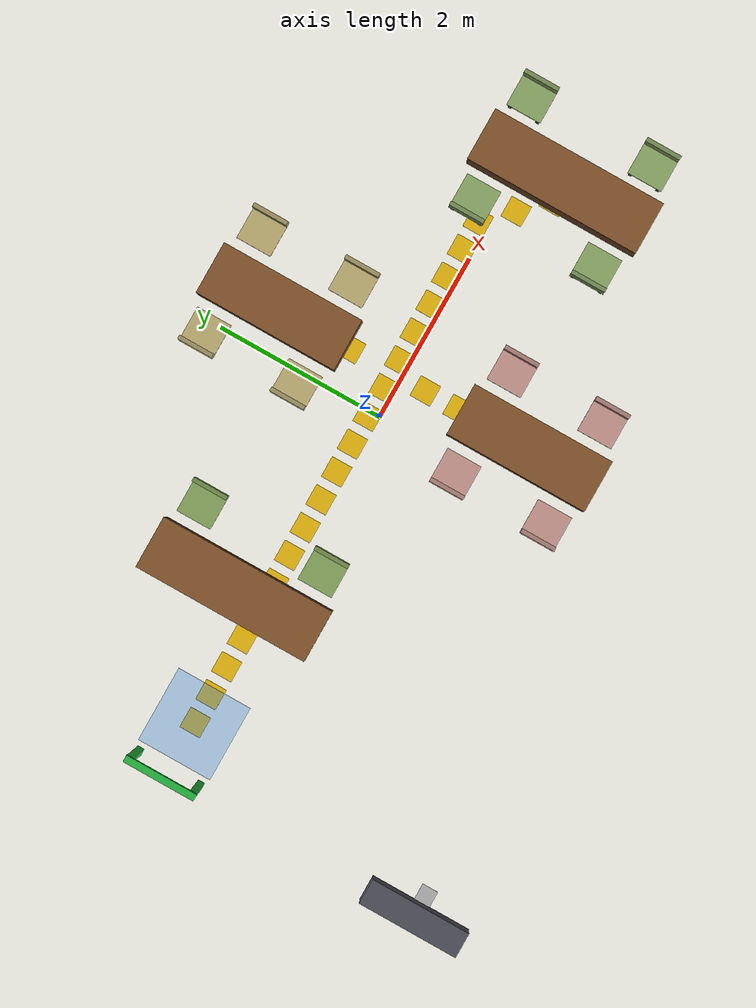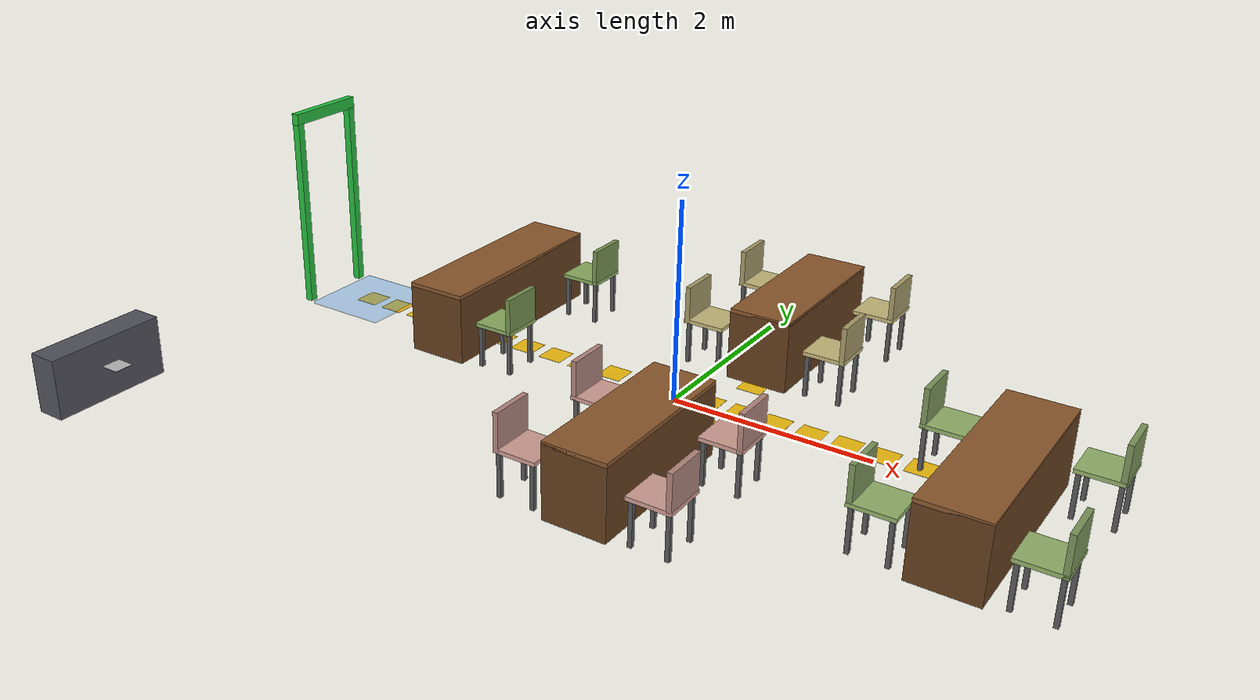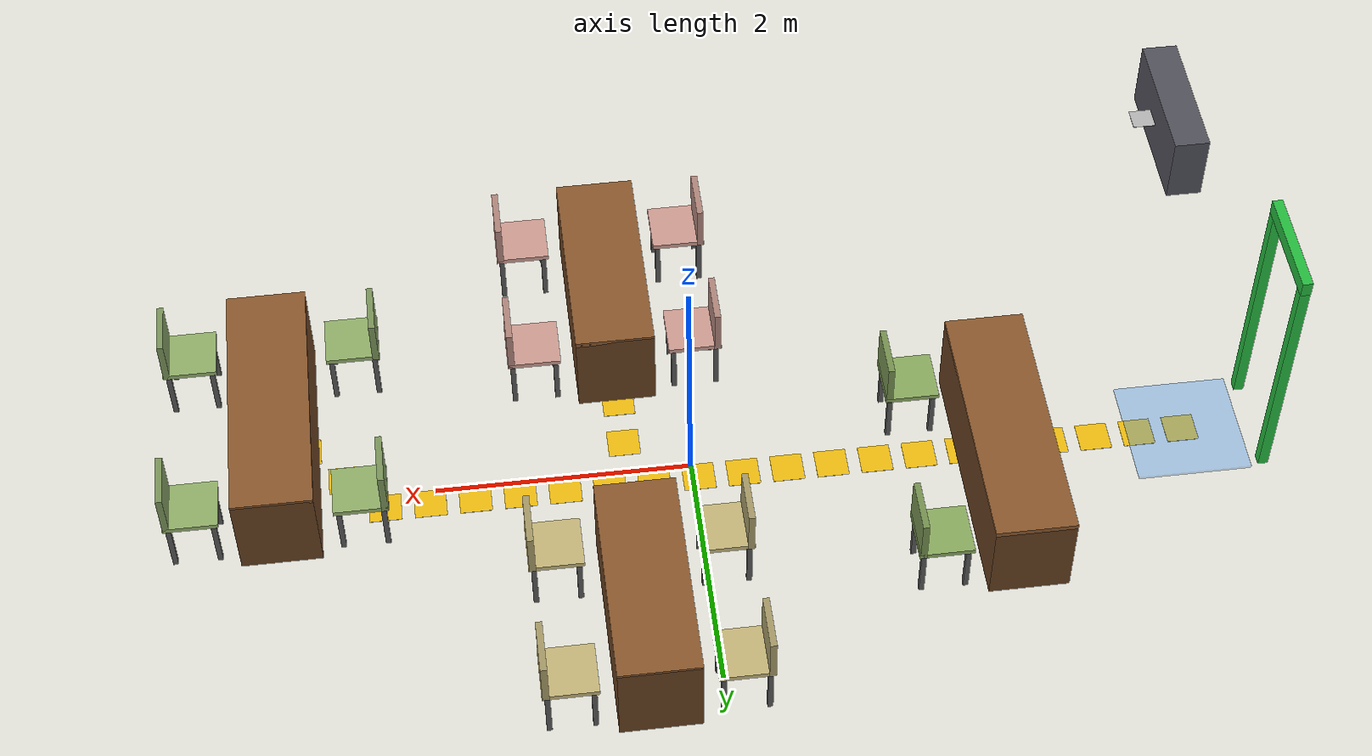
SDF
<sdf version="1.6">
 <world name="world_2026_amr">
  <physics name="8ms" type="ode">
   <max_step_size>0.008</max_step_size>
   <real_time_factor>1</real_time_factor>
   <real_time_update_rate>125</real_time_update_rate>
  </physics>
  <plugin name="gz::sim::systems::Physics" filename="gz-sim-physics-system"/>
  <plugin name="gz::sim::systems::UserCommands" filename="gz-sim-user-commands-system"/>
  <plugin name="gz::sim::systems::SceneBroadcaster" filename="gz-sim-scene-broadcaster-system"/>
  <plugin name="gz::sim::systems::Contact" filename="gz-sim-contact-system"/>
  <plugin name="gz::sim::systems::Sensors" filename="gz-sim-sensors-system">
   <render_engine>ogre2</render_engine>
  </plugin>
  <plugin name="gz::sim::systems::Imu" filename="gz-sim-imu-system"/>
  <plugin name="gz::sim::systems::NavSat" filename="gz-sim-navsat-system"/>
  <plugin name="gz::sim::systems::Actor" filename="gz-sim-actor-system"/>
  <spherical_coordinates>
   <surface_model>EARTH_WGS84</surface_model>
   <world_frame_orientation>ENU</world_frame_orientation>
   <latitude_deg>47.478950</latitude_deg>
   <longitude_deg>19.057785</longitude_deg>
   <elevation>0</elevation>
   <heading_deg>0</heading_deg>
  </spherical_coordinates>
  <light name="sun" type="directional">
   <pose>0 0 10 0 0 0</pose>
   <diffuse>0.8 0.8 0.8 1</diffuse>
   <specular>0.2 0.2 0.2 1</specular>
   <attenuation>
    <range>1000</range>
    <constant>0.9</constant>
    <linear>0.01</linear>
    <quadratic>0.001</quadratic>
   </attenuation>
   <direction>-0.5 0.1 -0.9</direction>
  </light>
  <model name="ground_plane">
   <static>1</static>
   <pose>0 0 0.015 0 0 0</pose>
   <link name="link">
    <collision name="collision">
     <geometry><plane><normal>0 0 1</normal><size>100 100</size></plane></geometry>
     <surface><friction><ode><mu>100</mu><mu2>50</mu2></ode></friction></surface>
    </collision>
   </link>
  </model>
  <model name="table_t1">
   <static>true</static>
   <pose>-2.4 0.45 0 0 0 0</pose>
   <link name="link">
    <collision name="col">
     <pose>0 0 0.375 0 0 0</pose>
     <geometry><box><size>0.62 2.09 0.75</size></box></geometry>
    </collision>
    <visual name="top">
     <pose>0 0 0.730 0 0 0</pose>
     <geometry><box><size>0.62 2.09 0.04</size></box></geometry>
     <material><ambient>0.30 0.18 0.10 1</ambient><diffuse>0.55 0.35 0.18 1</diffuse></material>
    </visual>
    <visual name="body">
     <pose>0 0 0.375 0 0 0</pose>
     <geometry><box><size>0.62 2.09 0.71</size></box></geometry>
     <material><ambient>0.25 0.15 0.08 1</ambient><diffuse>0.40 0.25 0.12 1</diffuse></material>
    </visual>
   </link>
  </model>
  <model name="chair_t1_px1">
   <static>true</static>
   <pose>-1.76 1.21 0 0 0 3.1416</pose>
   <link name="link">
    <collision name="seat_col">
     <pose>0 0 0.450 0 0 0</pose>
     <geometry><box><size>0.42 0.42 0.04</size></box></geometry>
    </collision>
    <collision name="back_col">
     <pose>-0.180 0 0.620 0 0 0</pose>
     <geometry><box><size>0.05 0.42 0.38</size></box></geometry>
    </collision>
    <visual name="seat">
     <pose>0 0 0.450 0 0 0</pose>
     <geometry><box><size>0.42 0.42 0.04</size></box></geometry>
     <material><ambient>0.33 0.41 0.23 1</ambient><diffuse>0.55 0.68 0.38 1</diffuse></material>
    </visual>
    <visual name="back">
     <pose>-0.180 0 0.620 0 0 0</pose>
     <geometry><box><size>0.05 0.42 0.38</size></box></geometry>
     <material><ambient>0.28 0.34 0.19 1</ambient><diffuse>0.47 0.58 0.32 1</diffuse></material>
    </visual>
    <visual name="leg_fl">
     <pose>0.170 0.170 0.215 0 0 0</pose>
     <geometry><box><size>0.04 0.04 0.43</size></box></geometry>
     <material><ambient>0.2 0.2 0.2 1</ambient><diffuse>0.35 0.35 0.35 1</diffuse></material>
    </visual>
    <visual name="leg_fr">
     <pose>0.170 -0.170 0.215 0 0 0</pose>
     <geometry><box><size>0.04 0.04 0.43</size></box></geometry>
     <material><ambient>0.2 0.2 0.2 1</ambient><diffuse>0.35 0.35 0.35 1</diffuse></material>
    </visual>
    <visual name="leg_bl">
     <pose>-0.170 0.170 0.215 0 0 0</pose>
     <geometry><box><size>0.04 0.04 0.43</size></box></geometry>
     <material><ambient>0.2 0.2 0.2 1</ambient><diffuse>0.35 0.35 0.35 1</diffuse></material>
    </visual>
    <visual name="leg_br">
     <pose>-0.170 -0.170 0.215 0 0 0</pose>
     <geometry><box><size>0.04 0.04 0.43</size></box></geometry>
     <material><ambient>0.2 0.2 0.2 1</ambient><diffuse>0.35 0.35 0.35 1</diffuse></material>
    </visual>
   </link>
  </model>
  <model name="chair_t1_px2">
   <static>true</static>
   <pose>-1.76 -0.3 0 0 0 3.1416</pose>
   <link name="link">
    <collision name="seat_col">
     <pose>0 0 0.450 0 0 0</pose>
     <geometry><box><size>0.42 0.42 0.04</size></box></geometry>
    </collision>
    <collision name="back_col">
     <pose>-0.180 0 0.620 0 0 0</pose>
     <geometry><box><size>0.05 0.42 0.38</size></box></geometry>
    </collision>
    <visual name="seat">
     <pose>0 0 0.450 0 0 0</pose>
     <geometry><box><size>0.42 0.42 0.04</size></box></geometry>
     <material><ambient>0.33 0.41 0.23 1</ambient><diffuse>0.55 0.68 0.38 1</diffuse></material>
    </visual>
    <visual name="back">
     <pose>-0.180 0 0.620 0 0 0</pose>
     <geometry><box><size>0.05 0.42 0.38</size></box></geometry>
     <material><ambient>0.28 0.34 0.19 1</ambient><diffuse>0.47 0.58 0.32 1</diffuse></material>
    </visual>
    <visual name="leg_fl">
     <pose>0.170 0.170 0.215 0 0 0</pose>
     <geometry><box><size>0.04 0.04 0.43</size></box></geometry>
     <material><ambient>0.2 0.2 0.2 1</ambient><diffuse>0.35 0.35 0.35 1</diffuse></material>
    </visual>
    <visual name="leg_fr">
     <pose>0.170 -0.170 0.215 0 0 0</pose>
     <geometry><box><size>0.04 0.04 0.43</size></box></geometry>
     <material><ambient>0.2 0.2 0.2 1</ambient><diffuse>0.35 0.35 0.35 1</diffuse></material>
    </visual>
    <visual name="leg_bl">
     <pose>-0.170 0.170 0.215 0 0 0</pose>
     <geometry><box><size>0.04 0.04 0.43</size></box></geometry>
     <material><ambient>0.2 0.2 0.2 1</ambient><diffuse>0.35 0.35 0.35 1</diffuse></material>
    </visual>
    <visual name="leg_br">
     <pose>-0.170 -0.170 0.215 0 0 0</pose>
     <geometry><box><size>0.04 0.04 0.43</size></box></geometry>
     <material><ambient>0.2 0.2 0.2 1</ambient><diffuse>0.35 0.35 0.35 1</diffuse></material>
    </visual>
   </link>
  </model>
  <model name="table_t2">
   <static>true</static>
   <pose>0.5 1.53 0 0 0 0</pose>
   <link name="link">
    <collision name="col">
     <pose>0 0 0.375 0 0 0</pose>
     <geometry><box><size>0.62 1.71 0.75</size></box></geometry>
    </collision>
    <visual name="top">
     <pose>0 0 0.730 0 0 0</pose>
     <geometry><box><size>0.62 1.71 0.04</size></box></geometry>
     <material><ambient>0.30 0.18 0.10 1</ambient><diffuse>0.55 0.35 0.18 1</diffuse></material>
    </visual>
    <visual name="body">
     <pose>0 0 0.375 0 0 0</pose>
     <geometry><box><size>0.62 1.71 0.71</size></box></geometry>
     <material><ambient>0.25 0.15 0.08 1</ambient><diffuse>0.40 0.25 0.12 1</diffuse></material>
    </visual>
   </link>
  </model>
  <model name="chair_t2_px1">
   <static>true</static>
   <pose>1.14 2.1 0 0 0 3.1416</pose>
   <link name="link">
    <collision name="seat_col">
     <pose>0 0 0.450 0 0 0</pose>
     <geometry><box><size>0.42 0.42 0.04</size></box></geometry>
    </collision>
    <collision name="back_col">
     <pose>-0.180 0 0.620 0 0 0</pose>
     <geometry><box><size>0.05 0.42 0.38</size></box></geometry>
    </collision>
    <visual name="seat">
     <pose>0 0 0.450 0 0 0</pose>
     <geometry><box><size>0.42 0.42 0.04</size></box></geometry>
     <material><ambient>0.47 0.43 0.29 1</ambient><diffuse>0.78 0.72 0.48 1</diffuse></material>
    </visual>
    <visual name="back">
     <pose>-0.180 0 0.620 0 0 0</pose>
     <geometry><box><size>0.05 0.42 0.38</size></box></geometry>
     <material><ambient>0.39 0.36 0.24 1</ambient><diffuse>0.66 0.61 0.41 1</diffuse></material>
    </visual>
    <visual name="leg_fl">
     <pose>0.170 0.170 0.215 0 0 0</pose>
     <geometry><box><size>0.04 0.04 0.43</size></box></geometry>
     <material><ambient>0.2 0.2 0.2 1</ambient><diffuse>0.35 0.35 0.35 1</diffuse></material>
    </visual>
    <visual name="leg_fr">
     <pose>0.170 -0.170 0.215 0 0 0</pose>
     <geometry><box><size>0.04 0.04 0.43</size></box></geometry>
     <material><ambient>0.2 0.2 0.2 1</ambient><diffuse>0.35 0.35 0.35 1</diffuse></material>
    </visual>
    <visual name="leg_bl">
     <pose>-0.170 0.170 0.215 0 0 0</pose>
     <geometry><box><size>0.04 0.04 0.43</size></box></geometry>
     <material><ambient>0.2 0.2 0.2 1</ambient><diffuse>0.35 0.35 0.35 1</diffuse></material>
    </visual>
    <visual name="leg_br">
     <pose>-0.170 -0.170 0.215 0 0 0</pose>
     <geometry><box><size>0.04 0.04 0.43</size></box></geometry>
     <material><ambient>0.2 0.2 0.2 1</ambient><diffuse>0.35 0.35 0.35 1</diffuse></material>
    </visual>
   </link>
  </model>
  <model name="chair_t2_px2">
   <static>true</static>
   <pose>1.14 0.96 0 0 0 3.1416</pose>
   <link name="link">
    <collision name="seat_col">
     <pose>0 0 0.450 0 0 0</pose>
     <geometry><box><size>0.42 0.42 0.04</size></box></geometry>
    </collision>
    <collision name="back_col">
     <pose>-0.180 0 0.620 0 0 0</pose>
     <geometry><box><size>0.05 0.42 0.38</size></box></geometry>
    </collision>
    <visual name="seat">
     <pose>0 0 0.450 0 0 0</pose>
     <geometry><box><size>0.42 0.42 0.04</size></box></geometry>
     <material><ambient>0.47 0.43 0.29 1</ambient><diffuse>0.78 0.72 0.48 1</diffuse></material>
    </visual>
    <visual name="back">
     <pose>-0.180 0 0.620 0 0 0</pose>
     <geometry><box><size>0.05 0.42 0.38</size></box></geometry>
     <material><ambient>0.39 0.36 0.24 1</ambient><diffuse>0.66 0.61 0.41 1</diffuse></material>
    </visual>
    <visual name="leg_fl">
     <pose>0.170 0.170 0.215 0 0 0</pose>
     <geometry><box><size>0.04 0.04 0.43</size></box></geometry>
     <material><ambient>0.2 0.2 0.2 1</ambient><diffuse>0.35 0.35 0.35 1</diffuse></material>
    </visual>
    <visual name="leg_fr">
     <pose>0.170 -0.170 0.215 0 0 0</pose>
     <geometry><box><size>0.04 0.04 0.43</size></box></geometry>
     <material><ambient>0.2 0.2 0.2 1</ambient><diffuse>0.35 0.35 0.35 1</diffuse></material>
    </visual>
    <visual name="leg_bl">
     <pose>-0.170 0.170 0.215 0 0 0</pose>
     <geometry><box><size>0.04 0.04 0.43</size></box></geometry>
     <material><ambient>0.2 0.2 0.2 1</ambient><diffuse>0.35 0.35 0.35 1</diffuse></material>
    </visual>
    <visual name="leg_br">
     <pose>-0.170 -0.170 0.215 0 0 0</pose>
     <geometry><box><size>0.04 0.04 0.43</size></box></geometry>
     <material><ambient>0.2 0.2 0.2 1</ambient><diffuse>0.35 0.35 0.35 1</diffuse></material>
    </visual>
   </link>
  </model>
  <model name="chair_t2_nx1">
   <static>true</static>
   <pose>-0.14 2.1 0 0 0 0.0000</pose>
   <link name="link">
    <collision name="seat_col">
     <pose>0 0 0.450 0 0 0</pose>
     <geometry><box><size>0.42 0.42 0.04</size></box></geometry>
    </collision>
    <collision name="back_col">
     <pose>-0.180 0 0.620 0 0 0</pose>
     <geometry><box><size>0.05 0.42 0.38</size></box></geometry>
    </collision>
    <visual name="seat">
     <pose>0 0 0.450 0 0 0</pose>
     <geometry><box><size>0.42 0.42 0.04</size></box></geometry>
     <material><ambient>0.47 0.43 0.29 1</ambient><diffuse>0.78 0.72 0.48 1</diffuse></material>
    </visual>
    <visual name="back">
     <pose>-0.180 0 0.620 0 0 0</pose>
     <geometry><box><size>0.05 0.42 0.38</size></box></geometry>
     <material><ambient>0.39 0.36 0.24 1</ambient><diffuse>0.66 0.61 0.41 1</diffuse></material>
    </visual>
    <visual name="leg_fl">
     <pose>0.170 0.170 0.215 0 0 0</pose>
     <geometry><box><size>0.04 0.04 0.43</size></box></geometry>
     <material><ambient>0.2 0.2 0.2 1</ambient><diffuse>0.35 0.35 0.35 1</diffuse></material>
    </visual>
    <visual name="leg_fr">
     <pose>0.170 -0.170 0.215 0 0 0</pose>
     <geometry><box><size>0.04 0.04 0.43</size></box></geometry>
     <material><ambient>0.2 0.2 0.2 1</ambient><diffuse>0.35 0.35 0.35 1</diffuse></material>
    </visual>
    <visual name="leg_bl">
     <pose>-0.170 0.170 0.215 0 0 0</pose>
     <geometry><box><size>0.04 0.04 0.43</size></box></geometry>
     <material><ambient>0.2 0.2 0.2 1</ambient><diffuse>0.35 0.35 0.35 1</diffuse></material>
    </visual>
    <visual name="leg_br">
     <pose>-0.170 -0.170 0.215 0 0 0</pose>
     <geometry><box><size>0.04 0.04 0.43</size></box></geometry>
     <material><ambient>0.2 0.2 0.2 1</ambient><diffuse>0.35 0.35 0.35 1</diffuse></material>
    </visual>
   </link>
  </model>
  <model name="chair_t2_nx2">
   <static>true</static>
   <pose>-0.14 0.96 0 0 0 0.0000</pose>
   <link name="link">
    <collision name="seat_col">
     <pose>0 0 0.450 0 0 0</pose>
     <geometry><box><size>0.42 0.42 0.04</size></box></geometry>
    </collision>
    <collision name="back_col">
     <pose>-0.180 0 0.620 0 0 0</pose>
     <geometry><box><size>0.05 0.42 0.38</size></box></geometry>
    </collision>
    <visual name="seat">
     <pose>0 0 0.450 0 0 0</pose>
     <geometry><box><size>0.42 0.42 0.04</size></box></geometry>
     <material><ambient>0.47 0.43 0.29 1</ambient><diffuse>0.78 0.72 0.48 1</diffuse></material>
    </visual>
    <visual name="back">
     <pose>-0.180 0 0.620 0 0 0</pose>
     <geometry><box><size>0.05 0.42 0.38</size></box></geometry>
     <material><ambient>0.39 0.36 0.24 1</ambient><diffuse>0.66 0.61 0.41 1</diffuse></material>
    </visual>
    <visual name="leg_fl">
     <pose>0.170 0.170 0.215 0 0 0</pose>
     <geometry><box><size>0.04 0.04 0.43</size></box></geometry>
     <material><ambient>0.2 0.2 0.2 1</ambient><diffuse>0.35 0.35 0.35 1</diffuse></material>
    </visual>
    <visual name="leg_fr">
     <pose>0.170 -0.170 0.215 0 0 0</pose>
     <geometry><box><size>0.04 0.04 0.43</size></box></geometry>
     <material><ambient>0.2 0.2 0.2 1</ambient><diffuse>0.35 0.35 0.35 1</diffuse></material>
    </visual>
    <visual name="leg_bl">
     <pose>-0.170 0.170 0.215 0 0 0</pose>
     <geometry><box><size>0.04 0.04 0.43</size></box></geometry>
     <material><ambient>0.2 0.2 0.2 1</ambient><diffuse>0.35 0.35 0.35 1</diffuse></material>
    </visual>
    <visual name="leg_br">
     <pose>-0.170 -0.170 0.215 0 0 0</pose>
     <geometry><box><size>0.04 0.04 0.43</size></box></geometry>
     <material><ambient>0.2 0.2 0.2 1</ambient><diffuse>0.35 0.35 0.35 1</diffuse></material>
    </visual>
   </link>
  </model>
  <model name="table_t3">
   <static>true</static>
   <pose>0.5 -1.58 0 0 0 0</pose>
   <link name="link">
    <collision name="col">
     <pose>0 0 0.375 0 0 0</pose>
     <geometry><box><size>0.62 1.71 0.75</size></box></geometry>
    </collision>
    <visual name="top">
     <pose>0 0 0.730 0 0 0</pose>
     <geometry><box><size>0.62 1.71 0.04</size></box></geometry>
     <material><ambient>0.30 0.18 0.10 1</ambient><diffuse>0.55 0.35 0.18 1</diffuse></material>
    </visual>
    <visual name="body">
     <pose>0 0 0.375 0 0 0</pose>
     <geometry><box><size>0.62 1.71 0.71</size></box></geometry>
     <material><ambient>0.25 0.15 0.08 1</ambient><diffuse>0.40 0.25 0.12 1</diffuse></material>
    </visual>
   </link>
  </model>
  <model name="chair_t3_px1">
   <static>true</static>
   <pose>1.14 -1.02 0 0 0 3.1416</pose>
   <link name="link">
    <collision name="seat_col">
     <pose>0 0 0.450 0 0 0</pose>
     <geometry><box><size>0.42 0.42 0.04</size></box></geometry>
    </collision>
    <collision name="back_col">
     <pose>-0.180 0 0.620 0 0 0</pose>
     <geometry><box><size>0.05 0.42 0.38</size></box></geometry>
    </collision>
    <visual name="seat">
     <pose>0 0 0.450 0 0 0</pose>
     <geometry><box><size>0.42 0.42 0.04</size></box></geometry>
     <material><ambient>0.49 0.37 0.35 1</ambient><diffuse>0.82 0.62 0.58 1</diffuse></material>
    </visual>
    <visual name="back">
     <pose>-0.180 0 0.620 0 0 0</pose>
     <geometry><box><size>0.05 0.42 0.38</size></box></geometry>
     <material><ambient>0.41 0.31 0.29 1</ambient><diffuse>0.70 0.53 0.49 1</diffuse></material>
    </visual>
    <visual name="leg_fl">
     <pose>0.170 0.170 0.215 0 0 0</pose>
     <geometry><box><size>0.04 0.04 0.43</size></box></geometry>
     <material><ambient>0.2 0.2 0.2 1</ambient><diffuse>0.35 0.35 0.35 1</diffuse></material>
    </visual>
    <visual name="leg_fr">
     <pose>0.170 -0.170 0.215 0 0 0</pose>
     <geometry><box><size>0.04 0.04 0.43</size></box></geometry>
     <material><ambient>0.2 0.2 0.2 1</ambient><diffuse>0.35 0.35 0.35 1</diffuse></material>
    </visual>
    <visual name="leg_bl">
     <pose>-0.170 0.170 0.215 0 0 0</pose>
     <geometry><box><size>0.04 0.04 0.43</size></box></geometry>
     <material><ambient>0.2 0.2 0.2 1</ambient><diffuse>0.35 0.35 0.35 1</diffuse></material>
    </visual>
    <visual name="leg_br">
     <pose>-0.170 -0.170 0.215 0 0 0</pose>
     <geometry><box><size>0.04 0.04 0.43</size></box></geometry>
     <material><ambient>0.2 0.2 0.2 1</ambient><diffuse>0.35 0.35 0.35 1</diffuse></material>
    </visual>
   </link>
  </model>
  <model name="chair_t3_px2">
   <static>true</static>
   <pose>1.14 -2.15 0 0 0 3.1416</pose>
   <link name="link">
    <collision name="seat_col">
     <pose>0 0 0.450 0 0 0</pose>
     <geometry><box><size>0.42 0.42 0.04</size></box></geometry>
    </collision>
    <collision name="back_col">
     <pose>-0.180 0 0.620 0 0 0</pose>
     <geometry><box><size>0.05 0.42 0.38</size></box></geometry>
    </collision>
    <visual name="seat">
     <pose>0 0 0.450 0 0 0</pose>
     <geometry><box><size>0.42 0.42 0.04</size></box></geometry>
     <material><ambient>0.49 0.37 0.35 1</ambient><diffuse>0.82 0.62 0.58 1</diffuse></material>
    </visual>
    <visual name="back">
     <pose>-0.180 0 0.620 0 0 0</pose>
     <geometry><box><size>0.05 0.42 0.38</size></box></geometry>
     <material><ambient>0.41 0.31 0.29 1</ambient><diffuse>0.70 0.53 0.49 1</diffuse></material>
    </visual>
    <visual name="leg_fl">
     <pose>0.170 0.170 0.215 0 0 0</pose>
     <geometry><box><size>0.04 0.04 0.43</size></box></geometry>
     <material><ambient>0.2 0.2 0.2 1</ambient><diffuse>0.35 0.35 0.35 1</diffuse></material>
    </visual>
    <visual name="leg_fr">
     <pose>0.170 -0.170 0.215 0 0 0</pose>
     <geometry><box><size>0.04 0.04 0.43</size></box></geometry>
     <material><ambient>0.2 0.2 0.2 1</ambient><diffuse>0.35 0.35 0.35 1</diffuse></material>
    </visual>
    <visual name="leg_bl">
     <pose>-0.170 0.170 0.215 0 0 0</pose>
     <geometry><box><size>0.04 0.04 0.43</size></box></geometry>
     <material><ambient>0.2 0.2 0.2 1</ambient><diffuse>0.35 0.35 0.35 1</diffuse></material>
    </visual>
    <visual name="leg_br">
     <pose>-0.170 -0.170 0.215 0 0 0</pose>
     <geometry><box><size>0.04 0.04 0.43</size></box></geometry>
     <material><ambient>0.2 0.2 0.2 1</ambient><diffuse>0.35 0.35 0.35 1</diffuse></material>
    </visual>
   </link>
  </model>
  <model name="chair_t3_nx1">
   <static>true</static>
   <pose>-0.14 -1.02 0 0 0 0.0000</pose>
   <link name="link">
    <collision name="seat_col">
     <pose>0 0 0.450 0 0 0</pose>
     <geometry><box><size>0.42 0.42 0.04</size></box></geometry>
    </collision>
    <collision name="back_col">
     <pose>-0.180 0 0.620 0 0 0</pose>
     <geometry><box><size>0.05 0.42 0.38</size></box></geometry>
    </collision>
    <visual name="seat">
     <pose>0 0 0.450 0 0 0</pose>
     <geometry><box><size>0.42 0.42 0.04</size></box></geometry>
     <material><ambient>0.49 0.37 0.35 1</ambient><diffuse>0.82 0.62 0.58 1</diffuse></material>
    </visual>
    <visual name="back">
     <pose>-0.180 0 0.620 0 0 0</pose>
     <geometry><box><size>0.05 0.42 0.38</size></box></geometry>
     <material><ambient>0.41 0.31 0.29 1</ambient><diffuse>0.70 0.53 0.49 1</diffuse></material>
    </visual>
    <visual name="leg_fl">
     <pose>0.170 0.170 0.215 0 0 0</pose>
     <geometry><box><size>0.04 0.04 0.43</size></box></geometry>
     <material><ambient>0.2 0.2 0.2 1</ambient><diffuse>0.35 0.35 0.35 1</diffuse></material>
    </visual>
    <visual name="leg_fr">
     <pose>0.170 -0.170 0.215 0 0 0</pose>
     <geometry><box><size>0.04 0.04 0.43</size></box></geometry>
     <material><ambient>0.2 0.2 0.2 1</ambient><diffuse>0.35 0.35 0.35 1</diffuse></material>
    </visual>
    <visual name="leg_bl">
     <pose>-0.170 0.170 0.215 0 0 0</pose>
     <geometry><box><size>0.04 0.04 0.43</size></box></geometry>
     <material><ambient>0.2 0.2 0.2 1</ambient><diffuse>0.35 0.35 0.35 1</diffuse></material>
    </visual>
    <visual name="leg_br">
     <pose>-0.170 -0.170 0.215 0 0 0</pose>
     <geometry><box><size>0.04 0.04 0.43</size></box></geometry>
     <material><ambient>0.2 0.2 0.2 1</ambient><diffuse>0.35 0.35 0.35 1</diffuse></material>
    </visual>
   </link>
  </model>
  <model name="chair_t3_nx2">
   <static>true</static>
   <pose>-0.14 -2.15 0 0 0 0.0000</pose>
   <link name="link">
    <collision name="seat_col">
     <pose>0 0 0.450 0 0 0</pose>
     <geometry><box><size>0.42 0.42 0.04</size></box></geometry>
    </collision>
    <collision name="back_col">
     <pose>-0.180 0 0.620 0 0 0</pose>
     <geometry><box><size>0.05 0.42 0.38</size></box></geometry>
    </collision>
    <visual name="seat">
     <pose>0 0 0.450 0 0 0</pose>
     <geometry><box><size>0.42 0.42 0.04</size></box></geometry>
     <material><ambient>0.49 0.37 0.35 1</ambient><diffuse>0.82 0.62 0.58 1</diffuse></material>
    </visual>
    <visual name="back">
     <pose>-0.180 0 0.620 0 0 0</pose>
     <geometry><box><size>0.05 0.42 0.38</size></box></geometry>
     <material><ambient>0.41 0.31 0.29 1</ambient><diffuse>0.70 0.53 0.49 1</diffuse></material>
    </visual>
    <visual name="leg_fl">
     <pose>0.170 0.170 0.215 0 0 0</pose>
     <geometry><box><size>0.04 0.04 0.43</size></box></geometry>
     <material><ambient>0.2 0.2 0.2 1</ambient><diffuse>0.35 0.35 0.35 1</diffuse></material>
    </visual>
    <visual name="leg_fr">
     <pose>0.170 -0.170 0.215 0 0 0</pose>
     <geometry><box><size>0.04 0.04 0.43</size></box></geometry>
     <material><ambient>0.2 0.2 0.2 1</ambient><diffuse>0.35 0.35 0.35 1</diffuse></material>
    </visual>
    <visual name="leg_bl">
     <pose>-0.170 0.170 0.215 0 0 0</pose>
     <geometry><box><size>0.04 0.04 0.43</size></box></geometry>
     <material><ambient>0.2 0.2 0.2 1</ambient><diffuse>0.35 0.35 0.35 1</diffuse></material>
    </visual>
    <visual name="leg_br">
     <pose>-0.170 -0.170 0.215 0 0 0</pose>
     <geometry><box><size>0.04 0.04 0.43</size></box></geometry>
     <material><ambient>0.2 0.2 0.2 1</ambient><diffuse>0.35 0.35 0.35 1</diffuse></material>
    </visual>
   </link>
  </model>
  <model name="table_t4">
   <static>true</static>
   <pose>3.2 -0.5 0 0 0 0</pose>
   <link name="link">
    <collision name="col">
     <pose>0 0 0.375 0 0 0</pose>
     <geometry><box><size>0.62 2.09 0.75</size></box></geometry>
    </collision>
    <visual name="top">
     <pose>0 0 0.730 0 0 0</pose>
     <geometry><box><size>0.62 2.09 0.04</size></box></geometry>
     <material><ambient>0.30 0.18 0.10 1</ambient><diffuse>0.55 0.35 0.18 1</diffuse></material>
    </visual>
    <visual name="body">
     <pose>0 0 0.375 0 0 0</pose>
     <geometry><box><size>0.62 2.09 0.71</size></box></geometry>
     <material><ambient>0.25 0.15 0.08 1</ambient><diffuse>0.40 0.25 0.12 1</diffuse></material>
    </visual>
   </link>
  </model>
  <model name="chair_t4_px1">
   <static>true</static>
   <pose>3.84 0.26 0 0 0 3.1416</pose>
   <link name="link">
    <collision name="seat_col">
     <pose>0 0 0.450 0 0 0</pose>
     <geometry><box><size>0.42 0.42 0.04</size></box></geometry>
    </collision>
    <collision name="back_col">
     <pose>-0.180 0 0.620 0 0 0</pose>
     <geometry><box><size>0.05 0.42 0.38</size></box></geometry>
    </collision>
    <visual name="seat">
     <pose>0 0 0.450 0 0 0</pose>
     <geometry><box><size>0.42 0.42 0.04</size></box></geometry>
     <material><ambient>0.35 0.42 0.25 1</ambient><diffuse>0.58 0.70 0.42 1</diffuse></material>
    </visual>
    <visual name="back">
     <pose>-0.180 0 0.620 0 0 0</pose>
     <geometry><box><size>0.05 0.42 0.38</size></box></geometry>
     <material><ambient>0.29 0.35 0.21 1</ambient><diffuse>0.49 0.59 0.36 1</diffuse></material>
    </visual>
    <visual name="leg_fl">
     <pose>0.170 0.170 0.215 0 0 0</pose>
     <geometry><box><size>0.04 0.04 0.43</size></box></geometry>
     <material><ambient>0.2 0.2 0.2 1</ambient><diffuse>0.35 0.35 0.35 1</diffuse></material>
    </visual>
    <visual name="leg_fr">
     <pose>0.170 -0.170 0.215 0 0 0</pose>
     <geometry><box><size>0.04 0.04 0.43</size></box></geometry>
     <material><ambient>0.2 0.2 0.2 1</ambient><diffuse>0.35 0.35 0.35 1</diffuse></material>
    </visual>
    <visual name="leg_bl">
     <pose>-0.170 0.170 0.215 0 0 0</pose>
     <geometry><box><size>0.04 0.04 0.43</size></box></geometry>
     <material><ambient>0.2 0.2 0.2 1</ambient><diffuse>0.35 0.35 0.35 1</diffuse></material>
    </visual>
    <visual name="leg_br">
     <pose>-0.170 -0.170 0.215 0 0 0</pose>
     <geometry><box><size>0.04 0.04 0.43</size></box></geometry>
     <material><ambient>0.2 0.2 0.2 1</ambient><diffuse>0.35 0.35 0.35 1</diffuse></material>
    </visual>
   </link>
  </model>
  <model name="chair_t4_px2">
   <static>true</static>
   <pose>3.84 -1.25 0 0 0 3.1416</pose>
   <link name="link">
    <collision name="seat_col">
     <pose>0 0 0.450 0 0 0</pose>
     <geometry><box><size>0.42 0.42 0.04</size></box></geometry>
    </collision>
    <collision name="back_col">
     <pose>-0.180 0 0.620 0 0 0</pose>
     <geometry><box><size>0.05 0.42 0.38</size></box></geometry>
    </collision>
    <visual name="seat">
     <pose>0 0 0.450 0 0 0</pose>
     <geometry><box><size>0.42 0.42 0.04</size></box></geometry>
     <material><ambient>0.35 0.42 0.25 1</ambient><diffuse>0.58 0.70 0.42 1</diffuse></material>
    </visual>
    <visual name="back">
     <pose>-0.180 0 0.620 0 0 0</pose>
     <geometry><box><size>0.05 0.42 0.38</size></box></geometry>
     <material><ambient>0.29 0.35 0.21 1</ambient><diffuse>0.49 0.59 0.36 1</diffuse></material>
    </visual>
    <visual name="leg_fl">
     <pose>0.170 0.170 0.215 0 0 0</pose>
     <geometry><box><size>0.04 0.04 0.43</size></box></geometry>
     <material><ambient>0.2 0.2 0.2 1</ambient><diffuse>0.35 0.35 0.35 1</diffuse></material>
    </visual>
    <visual name="leg_fr">
     <pose>0.170 -0.170 0.215 0 0 0</pose>
     <geometry><box><size>0.04 0.04 0.43</size></box></geometry>
     <material><ambient>0.2 0.2 0.2 1</ambient><diffuse>0.35 0.35 0.35 1</diffuse></material>
    </visual>
    <visual name="leg_bl">
     <pose>-0.170 0.170 0.215 0 0 0</pose>
     <geometry><box><size>0.04 0.04 0.43</size></box></geometry>
     <material><ambient>0.2 0.2 0.2 1</ambient><diffuse>0.35 0.35 0.35 1</diffuse></material>
    </visual>
    <visual name="leg_br">
     <pose>-0.170 -0.170 0.215 0 0 0</pose>
     <geometry><box><size>0.04 0.04 0.43</size></box></geometry>
     <material><ambient>0.2 0.2 0.2 1</ambient><diffuse>0.35 0.35 0.35 1</diffuse></material>
    </visual>
   </link>
  </model>
  <model name="chair_t4_nx1">
   <static>true</static>
   <pose>2.56 0.26 0 0 0 0.0000</pose>
   <link name="link">
    <collision name="seat_col">
     <pose>0 0 0.450 0 0 0</pose>
     <geometry><box><size>0.42 0.42 0.04</size></box></geometry>
    </collision>
    <collision name="back_col">
     <pose>-0.180 0 0.620 0 0 0</pose>
     <geometry><box><size>0.05 0.42 0.38</size></box></geometry>
    </collision>
    <visual name="seat">
     <pose>0 0 0.450 0 0 0</pose>
     <geometry><box><size>0.42 0.42 0.04</size></box></geometry>
     <material><ambient>0.35 0.42 0.25 1</ambient><diffuse>0.58 0.70 0.42 1</diffuse></material>
    </visual>
    <visual name="back">
     <pose>-0.180 0 0.620 0 0 0</pose>
     <geometry><box><size>0.05 0.42 0.38</size></box></geometry>
     <material><ambient>0.29 0.35 0.21 1</ambient><diffuse>0.49 0.59 0.36 1</diffuse></material>
    </visual>
    <visual name="leg_fl">
     <pose>0.170 0.170 0.215 0 0 0</pose>
     <geometry><box><size>0.04 0.04 0.43</size></box></geometry>
     <material><ambient>0.2 0.2 0.2 1</ambient><diffuse>0.35 0.35 0.35 1</diffuse></material>
    </visual>
    <visual name="leg_fr">
     <pose>0.170 -0.170 0.215 0 0 0</pose>
     <geometry><box><size>0.04 0.04 0.43</size></box></geometry>
     <material><ambient>0.2 0.2 0.2 1</ambient><diffuse>0.35 0.35 0.35 1</diffuse></material>
    </visual>
    <visual name="leg_bl">
     <pose>-0.170 0.170 0.215 0 0 0</pose>
     <geometry><box><size>0.04 0.04 0.43</size></box></geometry>
     <material><ambient>0.2 0.2 0.2 1</ambient><diffuse>0.35 0.35 0.35 1</diffuse></material>
    </visual>
    <visual name="leg_br">
     <pose>-0.170 -0.170 0.215 0 0 0</pose>
     <geometry><box><size>0.04 0.04 0.43</size></box></geometry>
     <material><ambient>0.2 0.2 0.2 1</ambient><diffuse>0.35 0.35 0.35 1</diffuse></material>
    </visual>
   </link>
  </model>
  <model name="chair_t4_nx2">
   <static>true</static>
   <pose>2.56 -1.25 0 0 0 0.0000</pose>
   <link name="link">
    <collision name="seat_col">
     <pose>0 0 0.450 0 0 0</pose>
     <geometry><box><size>0.42 0.42 0.04</size></box></geometry>
    </collision>
    <collision name="back_col">
     <pose>-0.180 0 0.620 0 0 0</pose>
     <geometry><box><size>0.05 0.42 0.38</size></box></geometry>
    </collision>
    <visual name="seat">
     <pose>0 0 0.450 0 0 0</pose>
     <geometry><box><size>0.42 0.42 0.04</size></box></geometry>
     <material><ambient>0.35 0.42 0.25 1</ambient><diffuse>0.58 0.70 0.42 1</diffuse></material>
    </visual>
    <visual name="back">
     <pose>-0.180 0 0.620 0 0 0</pose>
     <geometry><box><size>0.05 0.42 0.38</size></box></geometry>
     <material><ambient>0.29 0.35 0.21 1</ambient><diffuse>0.49 0.59 0.36 1</diffuse></material>
    </visual>
    <visual name="leg_fl">
     <pose>0.170 0.170 0.215 0 0 0</pose>
     <geometry><box><size>0.04 0.04 0.43</size></box></geometry>
     <material><ambient>0.2 0.2 0.2 1</ambient><diffuse>0.35 0.35 0.35 1</diffuse></material>
    </visual>
    <visual name="leg_fr">
     <pose>0.170 -0.170 0.215 0 0 0</pose>
     <geometry><box><size>0.04 0.04 0.43</size></box></geometry>
     <material><ambient>0.2 0.2 0.2 1</ambient><diffuse>0.35 0.35 0.35 1</diffuse></material>
    </visual>
    <visual name="leg_bl">
     <pose>-0.170 0.170 0.215 0 0 0</pose>
     <geometry><box><size>0.04 0.04 0.43</size></box></geometry>
     <material><ambient>0.2 0.2 0.2 1</ambient><diffuse>0.35 0.35 0.35 1</diffuse></material>
    </visual>
    <visual name="leg_br">
     <pose>-0.170 -0.170 0.215 0 0 0</pose>
     <geometry><box><size>0.04 0.04 0.43</size></box></geometry>
     <material><ambient>0.2 0.2 0.2 1</ambient><diffuse>0.35 0.35 0.35 1</diffuse></material>
    </visual>
   </link>
  </model>
  <model name="entry_door_frame">
   <static>true</static>
   <pose>-4.47 0.12 0 0 0 1.5708</pose>
   <link name="link">
    <visual name="lintel">
     <pose>0 0 2.05 0 0 0</pose>
     <geometry><box><size>0.85 0.08 0.12</size></box></geometry>
     <material><ambient>0.1 0.55 0.2 1</ambient><diffuse>0.15 0.75 0.25 1</diffuse></material>
    </visual>
    <visual name="jamb_l">
     <pose>-0.38 0 1.0 0 0 0</pose>
     <geometry><box><size>0.08 0.08 2.0</size></box></geometry>
     <material><ambient>0.1 0.55 0.2 1</ambient><diffuse>0.15 0.75 0.25 1</diffuse></material>
    </visual>
    <visual name="jamb_r">
     <pose>0.38 0 1.0 0 0 0</pose>
     <geometry><box><size>0.08 0.08 2.0</size></box></geometry>
     <material><ambient>0.1 0.55 0.2 1</ambient><diffuse>0.15 0.75 0.25 1</diffuse></material>
    </visual>
   </link>
  </model>
  <model name="entry_beacon_zone">
   <static>true</static>
   <pose>-3.92 0.12 0.01 0 0 0</pose>
   <link name="link">
    <visual name="zone">
     <geometry><box><size>0.9 0.9 0.02</size></box></geometry>
     <material><ambient>0.1 0.45 0.85 0.35</ambient><diffuse>0.2 0.55 0.95 0.35</diffuse></material>
    </visual>
   </link>
  </model>
  <model name="hideout_cabinet">
   <static>true</static>
   <pose>-4.55 -3.0 0 0 0 0</pose>
   <link name="link">
    <collision name="col">
     <pose>0 0 0.30 0 0 0</pose>
     <geometry><box><size>0.30 1.20 0.60</size></box></geometry>
    </collision>
    <visual name="vis">
     <pose>0 0 0.30 0 0 0</pose>
     <geometry><box><size>0.30 1.20 0.60</size></box></geometry>
     <material><ambient>0.18 0.18 0.20 1</ambient><diffuse>0.32 0.32 0.36 1</diffuse></material>
    </visual>
   </link>
  </model>
  <include><uri>model://aruco_0</uri><name>hideout_aruco</name><pose>-4.38 -3.0 0.35 0 1.5708 0</pose></include>
  <model name="tactile_block_0">
   <static>true</static>
   <pose>-3.900 0.120 0.012 0 0 0</pose>
   <link name="link">
    <visual name="visual">
     <geometry><box><size>0.25 0.25 0.003</size></box></geometry>
     <material><ambient>0.95 0.75 0.06 1.0</ambient><diffuse>0.95 0.75 0.06 1.0</diffuse></material>
    </visual>
   </link>
  </model>
  <model name="tactile_block_1">
   <static>true</static>
   <pose>-3.550 0.120 0.012 0 0 0</pose>
   <link name="link">
    <visual name="visual">
     <geometry><box><size>0.25 0.25 0.003</size></box></geometry>
     <material><ambient>0.95 0.75 0.06 1.0</ambient><diffuse>0.95 0.75 0.06 1.0</diffuse></material>
    </visual>
   </link>
  </model>
  <model name="tactile_block_2">
   <static>true</static>
   <pose>-3.200 0.120 0.012 0 0 0</pose>
   <link name="link">
    <visual name="visual">
     <geometry><box><size>0.25 0.25 0.003</size></box></geometry>
     <material><ambient>0.95 0.75 0.06 1.0</ambient><diffuse>0.95 0.75 0.06 1.0</diffuse></material>
    </visual>
   </link>
  </model>
  <model name="tactile_block_3">
   <static>true</static>
   <pose>-2.850 0.120 0.012 0 0 0</pose>
   <link name="link">
    <visual name="visual">
     <geometry><box><size>0.25 0.25 0.003</size></box></geometry>
     <material><ambient>0.95 0.75 0.06 1.0</ambient><diffuse>0.95 0.75 0.06 1.0</diffuse></material>
    </visual>
   </link>
  </model>
  <model name="tactile_block_4">
   <static>true</static>
   <pose>-2.500 0.120 0.012 0 0 0</pose>
   <link name="link">
    <visual name="visual">
     <geometry><box><size>0.25 0.25 0.003</size></box></geometry>
     <material><ambient>0.95 0.75 0.06 1.0</ambient><diffuse>0.95 0.75 0.06 1.0</diffuse></material>
    </visual>
   </link>
  </model>
  <model name="tactile_block_5">
   <static>true</static>
   <pose>-2.150 0.120 0.012 0 0 0</pose>
   <link name="link">
    <visual name="visual">
     <geometry><box><size>0.25 0.25 0.003</size></box></geometry>
     <material><ambient>0.95 0.75 0.06 1.0</ambient><diffuse>0.95 0.75 0.06 1.0</diffuse></material>
    </visual>
   </link>
  </model>
  <model name="tactile_block_6">
   <static>true</static>
   <pose>-1.800 0.120 0.012 0 0 0</pose>
   <link name="link">
    <visual name="visual">
     <geometry><box><size>0.25 0.25 0.003</size></box></geometry>
     <material><ambient>0.95 0.75 0.06 1.0</ambient><diffuse>0.95 0.75 0.06 1.0</diffuse></material>
    </visual>
   </link>
  </model>
  <model name="tactile_block_7">
   <static>true</static>
   <pose>-1.450 0.120 0.012 0 0 0</pose>
   <link name="link">
    <visual name="visual">
     <geometry><box><size>0.25 0.25 0.003</size></box></geometry>
     <material><ambient>0.95 0.75 0.06 1.0</ambient><diffuse>0.95 0.75 0.06 1.0</diffuse></material>
    </visual>
   </link>
  </model>
  <model name="tactile_block_8">
   <static>true</static>
   <pose>-1.100 0.120 0.012 0 0 0</pose>
   <link name="link">
    <visual name="visual">
     <geometry><box><size>0.25 0.25 0.003</size></box></geometry>
     <material><ambient>0.95 0.75 0.06 1.0</ambient><diffuse>0.95 0.75 0.06 1.0</diffuse></material>
    </visual>
   </link>
  </model>
  <model name="tactile_block_9">
   <static>true</static>
   <pose>-0.750 0.120 0.012 0 0 0</pose>
   <link name="link">
    <visual name="visual">
     <geometry><box><size>0.25 0.25 0.003</size></box></geometry>
     <material><ambient>0.95 0.75 0.06 1.0</ambient><diffuse>0.95 0.75 0.06 1.0</diffuse></material>
    </visual>
   </link>
  </model>
  <model name="tactile_block_10">
   <static>true</static>
   <pose>-0.400 0.120 0.012 0 0 0</pose>
   <link name="link">
    <visual name="visual">
     <geometry><box><size>0.25 0.25 0.003</size></box></geometry>
     <material><ambient>0.95 0.75 0.06 1.0</ambient><diffuse>0.95 0.75 0.06 1.0</diffuse></material>
    </visual>
   </link>
  </model>
  <model name="tactile_block_11">
   <static>true</static>
   <pose>-0.050 0.120 0.012 0 0 0</pose>
   <link name="link">
    <visual name="visual">
     <geometry><box><size>0.25 0.25 0.003</size></box></geometry>
     <material><ambient>0.95 0.75 0.06 1.0</ambient><diffuse>0.95 0.75 0.06 1.0</diffuse></material>
    </visual>
   </link>
  </model>
  <model name="tactile_block_12">
   <static>true</static>
   <pose>0.300 0.120 0.012 0 0 0</pose>
   <link name="link">
    <visual name="visual">
     <geometry><box><size>0.25 0.25 0.003</size></box></geometry>
     <material><ambient>0.95 0.75 0.06 1.0</ambient><diffuse>0.95 0.75 0.06 1.0</diffuse></material>
    </visual>
   </link>
  </model>
  <model name="tactile_block_13">
   <static>true</static>
   <pose>0.650 0.120 0.012 0 0 0</pose>
   <link name="link">
    <visual name="visual">
     <geometry><box><size>0.25 0.25 0.003</size></box></geometry>
     <material><ambient>0.95 0.75 0.06 1.0</ambient><diffuse>0.95 0.75 0.06 1.0</diffuse></material>
    </visual>
   </link>
  </model>
  <model name="tactile_block_14">
   <static>true</static>
   <pose>1.000 0.120 0.012 0 0 0</pose>
   <link name="link">
    <visual name="visual">
     <geometry><box><size>0.25 0.25 0.003</size></box></geometry>
     <material><ambient>0.95 0.75 0.06 1.0</ambient><diffuse>0.95 0.75 0.06 1.0</diffuse></material>
    </visual>
   </link>
  </model>
  <model name="tactile_block_15">
   <static>true</static>
   <pose>1.350 0.120 0.012 0 0 0</pose>
   <link name="link">
    <visual name="visual">
     <geometry><box><size>0.25 0.25 0.003</size></box></geometry>
     <material><ambient>0.95 0.75 0.06 1.0</ambient><diffuse>0.95 0.75 0.06 1.0</diffuse></material>
    </visual>
   </link>
  </model>
  <model name="tactile_block_16">
   <static>true</static>
   <pose>1.700 0.120 0.012 0 0 0</pose>
   <link name="link">
    <visual name="visual">
     <geometry><box><size>0.25 0.25 0.003</size></box></geometry>
     <material><ambient>0.95 0.75 0.06 1.0</ambient><diffuse>0.95 0.75 0.06 1.0</diffuse></material>
    </visual>
   </link>
  </model>
  <model name="tactile_block_17">
   <static>true</static>
   <pose>2.050 0.120 0.012 0 0 0</pose>
   <link name="link">
    <visual name="visual">
     <geometry><box><size>0.25 0.25 0.003</size></box></geometry>
     <material><ambient>0.95 0.75 0.06 1.0</ambient><diffuse>0.95 0.75 0.06 1.0</diffuse></material>
    </visual>
   </link>
  </model>
  <model name="tactile_block_18">
   <static>true</static>
   <pose>2.400 0.120 0.012 0 0 0</pose>
   <link name="link">
    <visual name="visual">
     <geometry><box><size>0.25 0.25 0.003</size></box></geometry>
     <material><ambient>0.95 0.75 0.06 1.0</ambient><diffuse>0.95 0.75 0.06 1.0</diffuse></material>
    </visual>
   </link>
  </model>
  <model name="tactile_block_19">
   <static>true</static>
   <pose>-2.400 0.700 0.012 0 0 0</pose>
   <link name="link">
    <visual name="visual">
     <geometry><box><size>0.25 0.25 0.003</size></box></geometry>
     <material><ambient>0.95 0.75 0.06 1.0</ambient><diffuse>0.95 0.75 0.06 1.0</diffuse></material>
    </visual>
   </link>
  </model>
  <model name="tactile_block_20">
   <static>true</static>
   <pose>0.500 0.650 0.012 0 0 0</pose>
   <link name="link">
    <visual name="visual">
     <geometry><box><size>0.25 0.25 0.003</size></box></geometry>
     <material><ambient>0.95 0.75 0.06 1.0</ambient><diffuse>0.95 0.75 0.06 1.0</diffuse></material>
    </visual>
   </link>
  </model>
  <model name="tactile_block_21">
   <static>true</static>
   <pose>0.500 -0.290 0.012 0 0 0</pose>
   <link name="link">
    <visual name="visual">
     <geometry><box><size>0.25 0.25 0.003</size></box></geometry>
     <material><ambient>0.95 0.75 0.06 1.0</ambient><diffuse>0.95 0.75 0.06 1.0</diffuse></material>
    </visual>
   </link>
  </model>
  <model name="tactile_block_22">
   <static>true</static>
   <pose>0.500 -0.700 0.012 0 0 0</pose>
   <link name="link">
    <visual name="visual">
     <geometry><box><size>0.25 0.25 0.003</size></box></geometry>
     <material><ambient>0.95 0.75 0.06 1.0</ambient><diffuse>0.95 0.75 0.06 1.0</diffuse></material>
    </visual>
   </link>
  </model>
  <model name="tactile_block_23">
   <static>true</static>
   <pose>2.700 -0.190 0.012 0 0 0</pose>
   <link name="link">
    <visual name="visual">
     <geometry><box><size>0.25 0.25 0.003</size></box></geometry>
     <material><ambient>0.95 0.75 0.06 1.0</ambient><diffuse>0.95 0.75 0.06 1.0</diffuse></material>
    </visual>
   </link>
  </model>
  <model name="tactile_block_24">
   <static>true</static>
   <pose>3.000 -0.500 0.012 0 0 0</pose>
   <link name="link">
    <visual name="visual">
     <geometry><box><size>0.25 0.25 0.003</size></box></geometry>
     <material><ambient>0.95 0.75 0.06 1.0</ambient><diffuse>0.95 0.75 0.06 1.0</diffuse></material>
    </visual>
   </link>
  </model>
 </world>
</sdf>

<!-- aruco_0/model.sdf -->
<sdf version="1.6">
  <model name="aruco_0">
    <static>true</static>
    <link name="link">
      <visual name="visual">
        <geometry>
          <mesh>
            <uri>model://aruco_0/meshes/aruco_0.dae</uri>
          <scale>0.38 0.38 0.38</scale></mesh>
        </geometry>
      </visual>
    </link>
  </model>
</sdf>
